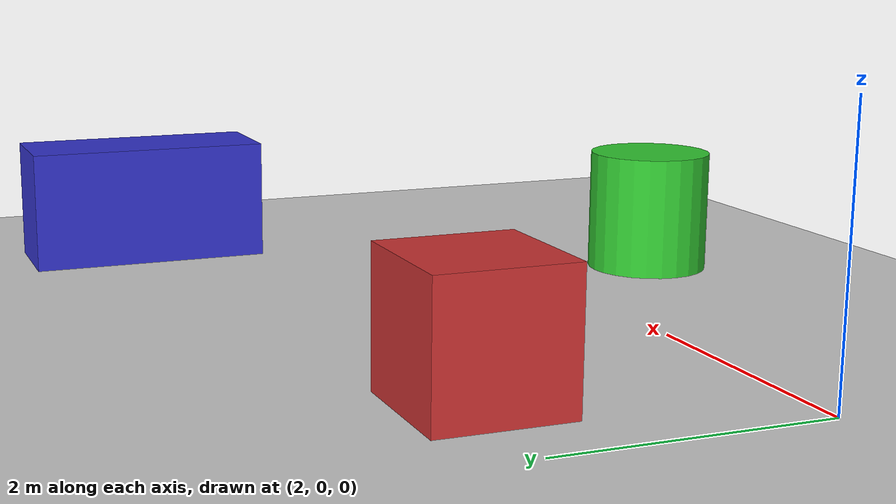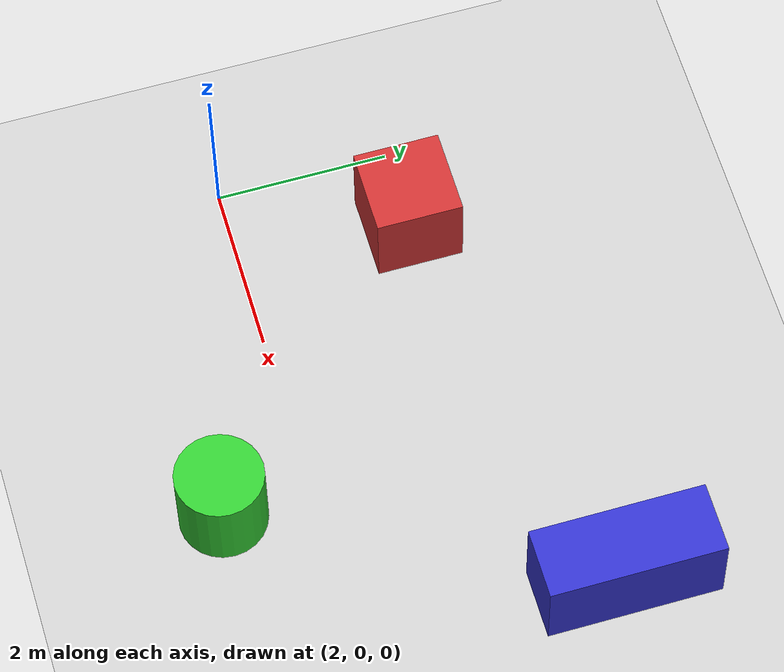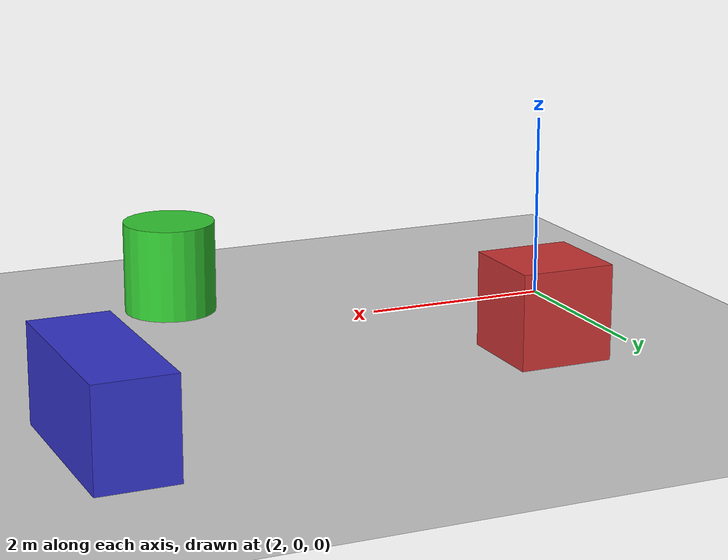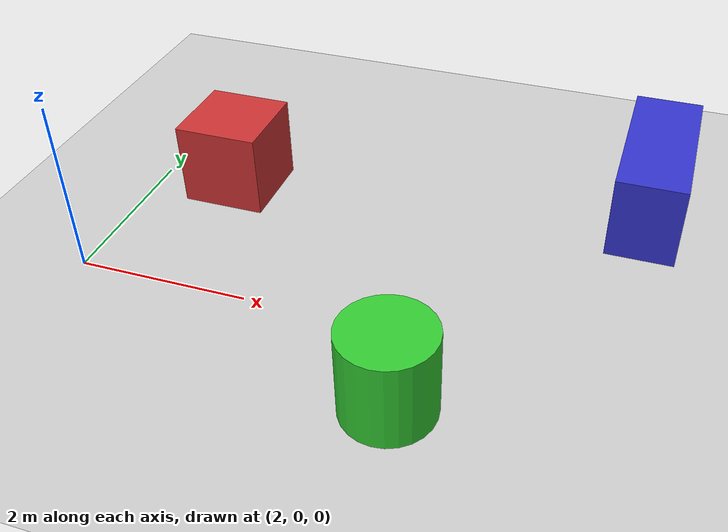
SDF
<?xml version="1.0" ?>
<sdf version="1.4">
  <world name="path_smoothing_world">
    <include>
      <uri>model://ground_plane</uri>
    </include>

    <include>
      <uri>model://sun</uri>
    </include>

    <!-- Static obstacles for testing -->
    <model name="obstacle_1">
      <pose>3 2 0.5 0 0 0</pose>
      <static>true</static>
      <link name="link">
        <collision name="collision">
          <geometry>
            <box>
              <size>1 1 1</size>
            </box>
          </geometry>
        </collision>
        <visual name="visual">
          <geometry>
            <box>
              <size>1 1 1</size>
            </box>
          </geometry>
          <material>
            <ambient>0.8 0.2 0.2 1</ambient>
            <diffuse>0.8 0.2 0.2 1</diffuse>
          </material>
        </visual>
      </link>
    </model>

    <model name="obstacle_2">
      <pose>6 -1 0.5 0 0 0</pose>
      <static>true</static>
      <link name="link">
        <collision name="collision">
          <geometry>
            <cylinder>
              <radius>0.5</radius>
              <length>1</length>
            </cylinder>
          </geometry>
        </collision>
        <visual name="visual">
          <geometry>
            <cylinder>
              <radius>0.5</radius>
              <length>1</length>
            </cylinder>
          </geometry>
          <material>
            <ambient>0.2 0.8 0.2 1</ambient>
            <diffuse>0.2 0.8 0.2 1</diffuse>
          </material>
        </visual>
      </link>
    </model>

    <model name="obstacle_3">
      <pose>8 3 0.5 0 0 0</pose>
      <static>true</static>
      <link name="link">
        <collision name="collision">
          <geometry>
            <box>
              <size>0.8 2 1</size>
            </box>
          </geometry>
        </collision>
        <visual name="visual">
          <geometry>
            <box>
              <size>0.8 2 1</size>
            </box>
          </geometry>
          <material>
            <ambient>0.2 0.2 0.8 1</ambient>
            <diffuse>0.2 0.2 0.8 1</diffuse>
          </material>
        </visual>
      </link>
    </model>

    <!-- Physics settings -->
    <physics type="ode">
      <real_time_update_rate>1000.0</real_time_update_rate>
      <max_step_size>0.001</max_step_size>
      <real_time_factor>1</real_time_factor>
      <ode>
        <solver>
          <type>quick</type>
          <iters>150</iters>
          <precon_iters>0</precon_iters>
          <sor>1.400000</sor>
          <use_dynamic_moi_rescaling>1</use_dynamic_moi_rescaling>
        </solver>
        <constraints>
          <cfm>0.00001</cfm>
          <erp>0.2</erp>
          <contact_max_correcting_vel>2000.000000</contact_max_correcting_vel>
          <contact_surface_layer>0.01000</contact_surface_layer>
        </constraints>
      </ode>
    </physics>

    <scene>
      <ambient>0.4 0.4 0.4 1</ambient>
      <background>0.7 0.7 0.7 1</background>
      <shadows>true</shadows>
    </scene>

    <gui fullscreen='0'>
      <camera name='user_camera'>
        <pose>0 -8 8 0 0.8 1.57</pose>
        <view_controller>orbit</view_controller>
      </camera>
    </gui>
  </world>
</sdf>
